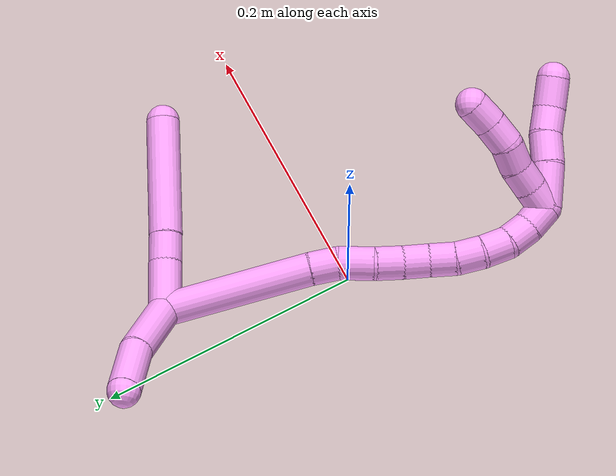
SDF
<sdf version="1.7">
 <world name="default">
  <model name="4">
   <static>0</static>
   <link name="4">
    <collision name="collision-cylinder-e_1_2_8">
     <pose>0.000912 0.001528 -0.018428 -3.05886 0.049279 -1.07409</pose>
     <geometry><cylinder><radius>0.0125</radius><length>0.037027</length></cylinder></geometry>
     <surface>
      <friction><ode><mu>1.16</mu><mu2>1.16</mu2><slip1>0</slip1><slip2>0</slip2></ode></friction>
      <contact><ode><kp>1e+06</kp><kd>1</kd><max_vel>0</max_vel><min_depth>0.001</min_depth></ode></contact>
     </surface>
    </collision>
    <visual name="visual-cylinder-e_1_2_8">
     <pose>0.000912 0.001528 -0.018428 -3.05886 0.049279 -1.07409</pose>
     <geometry><cylinder><radius>0.0125</radius><length>0.037027</length></cylinder></geometry>
     <material><ambient>1 0.65098 0.996078 1</ambient></material>
    </visual>
    <collision name="collision-cylinder-e_2_8_9">
     <pose>0.003173 0.00336 -0.047558 -3.11325 0.125341 -2.69739</pose>
     <geometry><cylinder><radius>0.0125</radius><length>0.021583</length></cylinder></geometry>
     <surface>
      <friction><ode><mu>1.16</mu><mu2>1.16</mu2><slip1>0</slip1><slip2>0</slip2></ode></friction>
      <contact><ode><kp>1e+06</kp><kd>1</kd><max_vel>0</max_vel><min_depth>0.001</min_depth></ode></contact>
     </surface>
    </collision>
    <visual name="visual-cylinder-e_2_8_9">
     <pose>0.003173 0.00336 -0.047558 -3.11325 0.125341 -2.69739</pose>
     <geometry><cylinder><radius>0.0125</radius><length>0.021583</length></cylinder></geometry>
     <material><ambient>1 0.65098 0.996078 1</ambient></material>
    </visual>
    <collision name="collision-cylinder-e_3_9_6">
     <pose>0.009339 0.007417 -0.103546 -3.05889 0.105603 -1.81315</pose>
     <geometry><cylinder><radius>0.0125</radius><length>0.091389</length></cylinder></geometry>
     <surface>
      <friction><ode><mu>1.16</mu><mu2>1.16</mu2><slip1>0</slip1><slip2>0</slip2></ode></friction>
      <contact><ode><kp>1e+06</kp><kd>1</kd><max_vel>0</max_vel><min_depth>0.001</min_depth></ode></contact>
     </surface>
    </collision>
    <visual name="visual-cylinder-e_3_9_6">
     <pose>0.009339 0.007417 -0.103546 -3.05889 0.105603 -1.81315</pose>
     <geometry><cylinder><radius>0.0125</radius><length>0.091389</length></cylinder></geometry>
     <material><ambient>1 0.65098 0.996078 1</ambient></material>
    </visual>
    <collision name="collision-cylinder-e_1_2_10">
     <pose>0.016822 0.000576 0.022644 -0.025419 0.638785 -0.008407</pose>
     <geometry><cylinder><radius>0.0125</radius><length>0.056429</length></cylinder></geometry>
     <surface>
      <friction><ode><mu>1.16</mu><mu2>1.16</mu2><slip1>0</slip1><slip2>0</slip2></ode></friction>
      <contact><ode><kp>1e+06</kp><kd>1</kd><max_vel>0</max_vel><min_depth>0.001</min_depth></ode></contact>
     </surface>
    </collision>
    <visual name="visual-cylinder-e_1_2_10">
     <pose>0.016822 0.000576 0.022644 -0.025419 0.638785 -0.008407</pose>
     <geometry><cylinder><radius>0.0125</radius><length>0.056429</length></cylinder></geometry>
     <material><ambient>1 0.65098 0.996078 1</ambient></material>
    </visual>
    <collision name="collision-cylinder-e_2_10_5">
     <pose>0.04358 -0.001734 0.06446 0.149361 0.473572 0.036106</pose>
     <geometry><cylinder><radius>0.0125</radius><length>0.043571</length></cylinder></geometry>
     <surface>
      <friction><ode><mu>1.16</mu><mu2>1.16</mu2><slip1>0</slip1><slip2>0</slip2></ode></friction>
      <contact><ode><kp>1e+06</kp><kd>1</kd><max_vel>0</max_vel><min_depth>0.001</min_depth></ode></contact>
     </surface>
    </collision>
    <visual name="visual-cylinder-e_2_10_5">
     <pose>0.04358 -0.001734 0.06446 0.149361 0.473572 0.036106</pose>
     <geometry><cylinder><radius>0.0125</radius><length>0.043571</length></cylinder></geometry>
     <material><ambient>1 0.65098 0.996078 1</ambient></material>
    </visual>
    <collision name="collision-cylinder-e_1_2_11">
     <pose>-0.014824 -0.050904 -0.017159 1.89592 -0.269255 -0.372805</pose>
     <geometry><cylinder><radius>0.0125</radius><length>0.111453</length></cylinder></geometry>
     <surface>
      <friction><ode><mu>1.16</mu><mu2>1.16</mu2><slip1>0</slip1><slip2>0</slip2></ode></friction>
      <contact><ode><kp>1e+06</kp><kd>1</kd><max_vel>0</max_vel><min_depth>0.001</min_depth></ode></contact>
     </surface>
    </collision>
    <visual name="visual-cylinder-e_1_2_11">
     <pose>-0.014824 -0.050904 -0.017159 1.89592 -0.269255 -0.372805</pose>
     <geometry><cylinder><radius>0.0125</radius><length>0.111453</length></cylinder></geometry>
     <material><ambient>1 0.65098 0.996078 1</ambient></material>
    </visual>
    <collision name="collision-cylinder-e_2_11_12">
     <pose>-0.033145 -0.111225 -0.037108 1.85887 -0.342089 -0.454678</pose>
     <geometry><cylinder><radius>0.0125</radius><length>0.02085</length></cylinder></geometry>
     <surface>
      <friction><ode><mu>1.16</mu><mu2>1.16</mu2><slip1>0</slip1><slip2>0</slip2></ode></friction>
      <contact><ode><kp>1e+06</kp><kd>1</kd><max_vel>0</max_vel><min_depth>0.001</min_depth></ode></contact>
     </surface>
    </collision>
    <visual name="visual-cylinder-e_2_11_12">
     <pose>-0.033145 -0.111225 -0.037108 1.85887 -0.342089 -0.454678</pose>
     <geometry><cylinder><radius>0.0125</radius><length>0.02085</length></cylinder></geometry>
     <material><ambient>1 0.65098 0.996078 1</ambient></material>
    </visual>
    <collision name="collision-cylinder-e_3_12_13">
     <pose>-0.041977 -0.132681 -0.040599 1.62887 -0.416426 -0.440565</pose>
     <geometry><cylinder><radius>0.0125</radius><length>0.026376</length></cylinder></geometry>
     <surface>
      <friction><ode><mu>1.16</mu><mu2>1.16</mu2><slip1>0</slip1><slip2>0</slip2></ode></friction>
      <contact><ode><kp>1e+06</kp><kd>1</kd><max_vel>0</max_vel><min_depth>0.001</min_depth></ode></contact>
     </surface>
    </collision>
    <visual name="visual-cylinder-e_3_12_13">
     <pose>-0.041977 -0.132681 -0.040599 1.62887 -0.416426 -0.440565</pose>
     <geometry><cylinder><radius>0.0125</radius><length>0.026376</length></cylinder></geometry>
     <material><ambient>1 0.65098 0.996078 1</ambient></material>
    </visual>
    <collision name="collision-cylinder-e_4_13_14">
     <pose>-0.053085 -0.15322 -0.043231 1.7944 -0.585105 -0.72171</pose>
     <geometry><cylinder><radius>0.0125</radius><length>0.020908</length></cylinder></geometry>
     <surface>
      <friction><ode><mu>1.16</mu><mu2>1.16</mu2><slip1>0</slip1><slip2>0</slip2></ode></friction>
      <contact><ode><kp>1e+06</kp><kd>1</kd><max_vel>0</max_vel><min_depth>0.001</min_depth></ode></contact>
     </surface>
    </collision>
    <visual name="visual-cylinder-e_4_13_14">
     <pose>-0.053085 -0.15322 -0.043231 1.7944 -0.585105 -0.72171</pose>
     <geometry><cylinder><radius>0.0125</radius><length>0.020908</length></cylinder></geometry>
     <material><ambient>1 0.65098 0.996078 1</ambient></material>
    </visual>
    <collision name="collision-cylinder-e_5_14_15">
     <pose>-0.063523 -0.170523 -0.047057 1.78263 -0.477852 -0.585722</pose>
     <geometry><cylinder><radius>0.0125</radius><length>0.020285</length></cylinder></geometry>
     <surface>
      <friction><ode><mu>1.16</mu><mu2>1.16</mu2><slip1>0</slip1><slip2>0</slip2></ode></friction>
      <contact><ode><kp>1e+06</kp><kd>1</kd><max_vel>0</max_vel><min_depth>0.001</min_depth></ode></contact>
     </surface>
    </collision>
    <visual name="visual-cylinder-e_5_14_15">
     <pose>-0.063523 -0.170523 -0.047057 1.78263 -0.477852 -0.585722</pose>
     <geometry><cylinder><radius>0.0125</radius><length>0.020285</length></cylinder></geometry>
     <material><ambient>1 0.65098 0.996078 1</ambient></material>
    </visual>
    <collision name="collision-cylinder-e_6_15_16">
     <pose>-0.071659 -0.188637 -0.050119 1.69561 -0.354436 -0.400504</pose>
     <geometry><cylinder><radius>0.0125</radius><length>0.020007</length></cylinder></geometry>
     <surface>
      <friction><ode><mu>1.16</mu><mu2>1.16</mu2><slip1>0</slip1><slip2>0</slip2></ode></friction>
      <contact><ode><kp>1e+06</kp><kd>1</kd><max_vel>0</max_vel><min_depth>0.001</min_depth></ode></contact>
     </surface>
    </collision>
    <visual name="visual-cylinder-e_6_15_16">
     <pose>-0.071659 -0.188637 -0.050119 1.69561 -0.354436 -0.400504</pose>
     <geometry><cylinder><radius>0.0125</radius><length>0.020007</length></cylinder></geometry>
     <material><ambient>1 0.65098 0.996078 1</ambient></material>
    </visual>
    <collision name="collision-cylinder-e_7_16_17">
     <pose>-0.078354 -0.20692 -0.054353 1.90002 -0.327691 -0.454407</pose>
     <geometry><cylinder><radius>0.0125</radius><length>0.020033</length></cylinder></geometry>
     <surface>
      <friction><ode><mu>1.16</mu><mu2>1.16</mu2><slip1>0</slip1><slip2>0</slip2></ode></friction>
      <contact><ode><kp>1e+06</kp><kd>1</kd><max_vel>0</max_vel><min_depth>0.001</min_depth></ode></contact>
     </surface>
    </collision>
    <visual name="visual-cylinder-e_7_16_17">
     <pose>-0.078354 -0.20692 -0.054353 1.90002 -0.327691 -0.454407</pose>
     <geometry><cylinder><radius>0.0125</radius><length>0.020033</length></cylinder></geometry>
     <material><ambient>1 0.65098 0.996078 1</ambient></material>
    </visual>
    <collision name="collision-cylinder-e_8_17_18">
     <pose>-0.08562 -0.223847 -0.062006 2.09394 -0.414692 -0.6985</pose>
     <geometry><cylinder><radius>0.0125</radius><length>0.020061</length></cylinder></geometry>
     <surface>
      <friction><ode><mu>1.16</mu><mu2>1.16</mu2><slip1>0</slip1><slip2>0</slip2></ode></friction>
      <contact><ode><kp>1e+06</kp><kd>1</kd><max_vel>0</max_vel><min_depth>0.001</min_depth></ode></contact>
     </surface>
    </collision>
    <visual name="visual-cylinder-e_8_17_18">
     <pose>-0.08562 -0.223847 -0.062006 2.09394 -0.414692 -0.6985</pose>
     <geometry><cylinder><radius>0.0125</radius><length>0.020061</length></cylinder></geometry>
     <material><ambient>1 0.65098 0.996078 1</ambient></material>
    </visual>
    <collision name="collision-cylinder-e_9_18_19">
     <pose>-0.093292 -0.237997 -0.073554 2.41425 -0.371513 -0.917282</pose>
     <geometry><cylinder><radius>0.0125</radius><length>0.020007</length></cylinder></geometry>
     <surface>
      <friction><ode><mu>1.16</mu><mu2>1.16</mu2><slip1>0</slip1><slip2>0</slip2></ode></friction>
      <contact><ode><kp>1e+06</kp><kd>1</kd><max_vel>0</max_vel><min_depth>0.001</min_depth></ode></contact>
     </surface>
    </collision>
    <visual name="visual-cylinder-e_9_18_19">
     <pose>-0.093292 -0.237997 -0.073554 2.41425 -0.371513 -0.917282</pose>
     <geometry><cylinder><radius>0.0125</radius><length>0.020007</length></cylinder></geometry>
     <material><ambient>1 0.65098 0.996078 1</ambient></material>
    </visual>
    <collision name="collision-cylinder-e_10_19_1">
     <pose>-0.098636 -0.249886 -0.088571 2.52633 -0.171904 -0.529654</pose>
     <geometry><cylinder><radius>0.0125</radius><length>0.02002</length></cylinder></geometry>
     <surface>
      <friction><ode><mu>1.16</mu><mu2>1.16</mu2><slip1>0</slip1><slip2>0</slip2></ode></friction>
      <contact><ode><kp>1e+06</kp><kd>1</kd><max_vel>0</max_vel><min_depth>0.001</min_depth></ode></contact>
     </surface>
    </collision>
    <visual name="visual-cylinder-e_10_19_1">
     <pose>-0.098636 -0.249886 -0.088571 2.52633 -0.171904 -0.529654</pose>
     <geometry><cylinder><radius>0.0125</radius><length>0.02002</length></cylinder></geometry>
     <material><ambient>1 0.65098 0.996078 1</ambient></material>
    </visual>
    <collision name="collision-cylinder-e_1_1_20">
     <pose>-0.097171 -0.25717 -0.112782 3.04342 0.193274 2.20346</pose>
     <geometry><cylinder><radius>0.0125</radius><length>0.033086</length></cylinder></geometry>
     <surface>
      <friction><ode><mu>1.16</mu><mu2>1.16</mu2><slip1>0</slip1><slip2>0</slip2></ode></friction>
      <contact><ode><kp>1e+06</kp><kd>1</kd><max_vel>0</max_vel><min_depth>0.001</min_depth></ode></contact>
     </surface>
    </collision>
    <visual name="visual-cylinder-e_1_1_20">
     <pose>-0.097171 -0.25717 -0.112782 3.04342 0.193274 2.20346</pose>
     <geometry><cylinder><radius>0.0125</radius><length>0.033086</length></cylinder></geometry>
     <material><ambient>1 0.65098 0.996078 1</ambient></material>
    </visual>
    <collision name="collision-cylinder-e_2_20_21">
     <pose>-0.091935 -0.257986 -0.140258 -3.07317 0.179482 -2.41473</pose>
     <geometry><cylinder><radius>0.0125</radius><length>0.023061</length></cylinder></geometry>
     <surface>
      <friction><ode><mu>1.16</mu><mu2>1.16</mu2><slip1>0</slip1><slip2>0</slip2></ode></friction>
      <contact><ode><kp>1e+06</kp><kd>1</kd><max_vel>0</max_vel><min_depth>0.001</min_depth></ode></contact>
     </surface>
    </collision>
    <visual name="visual-cylinder-e_2_20_21">
     <pose>-0.091935 -0.257986 -0.140258 -3.07317 0.179482 -2.41473</pose>
     <geometry><cylinder><radius>0.0125</radius><length>0.023061</length></cylinder></geometry>
     <material><ambient>1 0.65098 0.996078 1</ambient></material>
    </visual>
    <collision name="collision-cylinder-e_3_21_22">
     <pose>-0.089193 -0.258435 -0.161593 3.01998 0.06762 1.01419</pose>
     <geometry><cylinder><radius>0.0125</radius><length>0.020228</length></cylinder></geometry>
     <surface>
      <friction><ode><mu>1.16</mu><mu2>1.16</mu2><slip1>0</slip1><slip2>0</slip2></ode></friction>
      <contact><ode><kp>1e+06</kp><kd>1</kd><max_vel>0</max_vel><min_depth>0.001</min_depth></ode></contact>
     </surface>
    </collision>
    <visual name="visual-cylinder-e_3_21_22">
     <pose>-0.089193 -0.258435 -0.161593 3.01998 0.06762 1.01419</pose>
     <geometry><cylinder><radius>0.0125</radius><length>0.020228</length></cylinder></geometry>
     <material><ambient>1 0.65098 0.996078 1</ambient></material>
    </visual>
    <collision name="collision-cylinder-e_4_22_4">
     <pose>-0.08543 -0.261888 -0.182793 2.94485 0.263835 1.86258</pose>
     <geometry><cylinder><radius>0.0125</radius><length>0.023624</length></cylinder></geometry>
     <surface>
      <friction><ode><mu>1.16</mu><mu2>1.16</mu2><slip1>0</slip1><slip2>0</slip2></ode></friction>
      <contact><ode><kp>1e+06</kp><kd>1</kd><max_vel>0</max_vel><min_depth>0.001</min_depth></ode></contact>
     </surface>
    </collision>
    <visual name="visual-cylinder-e_4_22_4">
     <pose>-0.08543 -0.261888 -0.182793 2.94485 0.263835 1.86258</pose>
     <geometry><cylinder><radius>0.0125</radius><length>0.023624</length></cylinder></geometry>
     <material><ambient>1 0.65098 0.996078 1</ambient></material>
    </visual>
    <collision name="collision-cylinder-e_1_1_23">
     <pose>-0.092602 -0.252374 -0.102076 -2.61011 0.886226 -2.10018</pose>
     <geometry><cylinder><radius>0.0125</radius><length>0.02</length></cylinder></geometry>
     <surface>
      <friction><ode><mu>1.16</mu><mu2>1.16</mu2><slip1>0</slip1><slip2>0</slip2></ode></friction>
      <contact><ode><kp>1e+06</kp><kd>1</kd><max_vel>0</max_vel><min_depth>0.001</min_depth></ode></contact>
     </surface>
    </collision>
    <visual name="visual-cylinder-e_1_1_23">
     <pose>-0.092602 -0.252374 -0.102076 -2.61011 0.886226 -2.10018</pose>
     <geometry><cylinder><radius>0.0125</radius><length>0.02</length></cylinder></geometry>
     <material><ambient>1 0.65098 0.996078 1</ambient></material>
    </visual>
    <collision name="collision-cylinder-e_2_23_24">
     <pose>-0.076527 -0.246514 -0.112385 -2.64141 0.984115 -2.25219</pose>
     <geometry><cylinder><radius>0.0125</radius><length>0.02</length></cylinder></geometry>
     <surface>
      <friction><ode><mu>1.16</mu><mu2>1.16</mu2><slip1>0</slip1><slip2>0</slip2></ode></friction>
      <contact><ode><kp>1e+06</kp><kd>1</kd><max_vel>0</max_vel><min_depth>0.001</min_depth></ode></contact>
     </surface>
    </collision>
    <visual name="visual-cylinder-e_2_23_24">
     <pose>-0.076527 -0.246514 -0.112385 -2.64141 0.984115 -2.25219</pose>
     <geometry><cylinder><radius>0.0125</radius><length>0.02</length></cylinder></geometry>
     <material><ambient>1 0.65098 0.996078 1</ambient></material>
    </visual>
    <collision name="collision-cylinder-e_3_24_25">
     <pose>-0.059799 -0.243176 -0.122625 -3.0153 0.997275 -2.91039</pose>
     <geometry><cylinder><radius>0.0125</radius><length>0.02</length></cylinder></geometry>
     <surface>
      <friction><ode><mu>1.16</mu><mu2>1.16</mu2><slip1>0</slip1><slip2>0</slip2></ode></friction>
      <contact><ode><kp>1e+06</kp><kd>1</kd><max_vel>0</max_vel><min_depth>0.001</min_depth></ode></contact>
     </surface>
    </collision>
    <visual name="visual-cylinder-e_3_24_25">
     <pose>-0.059799 -0.243176 -0.122625 -3.0153 0.997275 -2.91039</pose>
     <geometry><cylinder><radius>0.0125</radius><length>0.02</length></cylinder></geometry>
     <material><ambient>1 0.65098 0.996078 1</ambient></material>
    </visual>
    <collision name="collision-cylinder-e_4_25_26">
     <pose>-0.044001 -0.238591 -0.13349 -2.52306 0.832824 -1.89033</pose>
     <geometry><cylinder><radius>0.0125</radius><length>0.02</length></cylinder></geometry>
     <surface>
      <friction><ode><mu>1.16</mu><mu2>1.16</mu2><slip1>0</slip1><slip2>0</slip2></ode></friction>
      <contact><ode><kp>1e+06</kp><kd>1</kd><max_vel>0</max_vel><min_depth>0.001</min_depth></ode></contact>
     </surface>
    </collision>
    <visual name="visual-cylinder-e_4_25_26">
     <pose>-0.044001 -0.238591 -0.13349 -2.52306 0.832824 -1.89033</pose>
     <geometry><cylinder><radius>0.0125</radius><length>0.02</length></cylinder></geometry>
     <material><ambient>1 0.65098 0.996078 1</ambient></material>
    </visual>
    <collision name="collision-cylinder-e_5_26_3">
     <pose>-0.028752 -0.230501 -0.143534 -2.39886 0.902788 -1.78805</pose>
     <geometry><cylinder><radius>0.0125</radius><length>0.02</length></cylinder></geometry>
     <surface>
      <friction><ode><mu>1.16</mu><mu2>1.16</mu2><slip1>0</slip1><slip2>0</slip2></ode></friction>
      <contact><ode><kp>1e+06</kp><kd>1</kd><max_vel>0</max_vel><min_depth>0.001</min_depth></ode></contact>
     </surface>
    </collision>
    <visual name="visual-cylinder-e_5_26_3">
     <pose>-0.028752 -0.230501 -0.143534 -2.39886 0.902788 -1.78805</pose>
     <geometry><cylinder><radius>0.0125</radius><length>0.02</length></cylinder></geometry>
     <material><ambient>1 0.65098 0.996078 1</ambient></material>
    </visual>
    <collision name="collision-sphere-3">
     <pose>-0.020901 -0.226312 -0.148097 0 -0 0</pose>
     <geometry><sphere><radius>0.0125</radius></sphere></geometry>
     <surface>
      <friction><ode><mu>1.16</mu><mu2>1.16</mu2><slip1>0</slip1><slip2>0</slip2></ode></friction>
      <contact><ode><kp>1e+06</kp><kd>1</kd><max_vel>0</max_vel><min_depth>0.001</min_depth></ode></contact>
     </surface>
    </collision>
    <visual name="visual-sphere-3">
     <pose>-0.020901 -0.226312 -0.148097 0 -0 0</pose>
     <geometry><sphere><radius>0.0125</radius></sphere></geometry>
     <material><ambient>1 0.65098 0.996078 1</ambient></material>
    </visual>
    <collision name="collision-sphere-26">
     <pose>-0.036603 -0.23469 -0.138971 0 -0 0</pose>
     <geometry><sphere><radius>0.0125</radius></sphere></geometry>
     <surface>
      <friction><ode><mu>1.16</mu><mu2>1.16</mu2><slip1>0</slip1><slip2>0</slip2></ode></friction>
      <contact><ode><kp>1e+06</kp><kd>1</kd><max_vel>0</max_vel><min_depth>0.001</min_depth></ode></contact>
     </surface>
    </collision>
    <visual name="visual-sphere-26">
     <pose>-0.036603 -0.23469 -0.138971 0 -0 0</pose>
     <geometry><sphere><radius>0.0125</radius></sphere></geometry>
     <material><ambient>1 0.65098 0.996078 1</ambient></material>
    </visual>
    <collision name="collision-sphere-25">
     <pose>-0.051399 -0.242493 -0.128008 0 -0 0</pose>
     <geometry><sphere><radius>0.0125</radius></sphere></geometry>
     <surface>
      <friction><ode><mu>1.16</mu><mu2>1.16</mu2><slip1>0</slip1><slip2>0</slip2></ode></friction>
      <contact><ode><kp>1e+06</kp><kd>1</kd><max_vel>0</max_vel><min_depth>0.001</min_depth></ode></contact>
     </surface>
    </collision>
    <visual name="visual-sphere-25">
     <pose>-0.051399 -0.242493 -0.128008 0 -0 0</pose>
     <geometry><sphere><radius>0.0125</radius></sphere></geometry>
     <material><ambient>1 0.65098 0.996078 1</ambient></material>
    </visual>
    <collision name="collision-sphere-24">
     <pose>-0.068199 -0.243859 -0.117243 0 -0 0</pose>
     <geometry><sphere><radius>0.0125</radius></sphere></geometry>
     <surface>
      <friction><ode><mu>1.16</mu><mu2>1.16</mu2><slip1>0</slip1><slip2>0</slip2></ode></friction>
      <contact><ode><kp>1e+06</kp><kd>1</kd><max_vel>0</max_vel><min_depth>0.001</min_depth></ode></contact>
     </surface>
    </collision>
    <visual name="visual-sphere-24">
     <pose>-0.068199 -0.243859 -0.117243 0 -0 0</pose>
     <geometry><sphere><radius>0.0125</radius></sphere></geometry>
     <material><ambient>1 0.65098 0.996078 1</ambient></material>
    </visual>
    <collision name="collision-sphere-23">
     <pose>-0.084855 -0.249169 -0.107527 0 -0 0</pose>
     <geometry><sphere><radius>0.0125</radius></sphere></geometry>
     <surface>
      <friction><ode><mu>1.16</mu><mu2>1.16</mu2><slip1>0</slip1><slip2>0</slip2></ode></friction>
      <contact><ode><kp>1e+06</kp><kd>1</kd><max_vel>0</max_vel><min_depth>0.001</min_depth></ode></contact>
     </surface>
    </collision>
    <visual name="visual-sphere-23">
     <pose>-0.084855 -0.249169 -0.107527 0 -0 0</pose>
     <geometry><sphere><radius>0.0125</radius></sphere></geometry>
     <material><ambient>1 0.65098 0.996078 1</ambient></material>
    </visual>
    <collision name="collision-sphere-4">
     <pose>-0.082349 -0.264117 -0.193976 0 -0 0</pose>
     <geometry><sphere><radius>0.0125</radius></sphere></geometry>
     <surface>
      <friction><ode><mu>1.16</mu><mu2>1.16</mu2><slip1>0</slip1><slip2>0</slip2></ode></friction>
      <contact><ode><kp>1e+06</kp><kd>1</kd><max_vel>0</max_vel><min_depth>0.001</min_depth></ode></contact>
     </surface>
    </collision>
    <visual name="visual-sphere-4">
     <pose>-0.082349 -0.264117 -0.193976 0 -0 0</pose>
     <geometry><sphere><radius>0.0125</radius></sphere></geometry>
     <material><ambient>1 0.65098 0.996078 1</ambient></material>
    </visual>
    <collision name="collision-sphere-22">
     <pose>-0.08851 -0.259659 -0.17161 0 -0 0</pose>
     <geometry><sphere><radius>0.0125</radius></sphere></geometry>
     <surface>
      <friction><ode><mu>1.16</mu><mu2>1.16</mu2><slip1>0</slip1><slip2>0</slip2></ode></friction>
      <contact><ode><kp>1e+06</kp><kd>1</kd><max_vel>0</max_vel><min_depth>0.001</min_depth></ode></contact>
     </surface>
    </collision>
    <visual name="visual-sphere-22">
     <pose>-0.08851 -0.259659 -0.17161 0 -0 0</pose>
     <geometry><sphere><radius>0.0125</radius></sphere></geometry>
     <material><ambient>1 0.65098 0.996078 1</ambient></material>
    </visual>
    <collision name="collision-sphere-21">
     <pose>-0.089877 -0.25721 -0.151577 0 -0 0</pose>
     <geometry><sphere><radius>0.0125</radius></sphere></geometry>
     <surface>
      <friction><ode><mu>1.16</mu><mu2>1.16</mu2><slip1>0</slip1><slip2>0</slip2></ode></friction>
      <contact><ode><kp>1e+06</kp><kd>1</kd><max_vel>0</max_vel><min_depth>0.001</min_depth></ode></contact>
     </surface>
    </collision>
    <visual name="visual-sphere-21">
     <pose>-0.089877 -0.25721 -0.151577 0 -0 0</pose>
     <geometry><sphere><radius>0.0125</radius></sphere></geometry>
     <material><ambient>1 0.65098 0.996078 1</ambient></material>
    </visual>
    <collision name="collision-sphere-20">
     <pose>-0.093994 -0.258762 -0.128939 0 -0 0</pose>
     <geometry><sphere><radius>0.0125</radius></sphere></geometry>
     <surface>
      <friction><ode><mu>1.16</mu><mu2>1.16</mu2><slip1>0</slip1><slip2>0</slip2></ode></friction>
      <contact><ode><kp>1e+06</kp><kd>1</kd><max_vel>0</max_vel><min_depth>0.001</min_depth></ode></contact>
     </surface>
    </collision>
    <visual name="visual-sphere-20">
     <pose>-0.093994 -0.258762 -0.128939 0 -0 0</pose>
     <geometry><sphere><radius>0.0125</radius></sphere></geometry>
     <material><ambient>1 0.65098 0.996078 1</ambient></material>
    </visual>
    <collision name="collision-sphere-5">
     <pose>0.053515 -0.004619 0.083632 0 -0 0</pose>
     <geometry><sphere><radius>0.0125</radius></sphere></geometry>
     <surface>
      <friction><ode><mu>1.16</mu><mu2>1.16</mu2><slip1>0</slip1><slip2>0</slip2></ode></friction>
      <contact><ode><kp>1e+06</kp><kd>1</kd><max_vel>0</max_vel><min_depth>0.001</min_depth></ode></contact>
     </surface>
    </collision>
    <visual name="visual-sphere-5">
     <pose>0.053515 -0.004619 0.083632 0 -0 0</pose>
     <geometry><sphere><radius>0.0125</radius></sphere></geometry>
     <material><ambient>1 0.65098 0.996078 1</ambient></material>
    </visual>
    <collision name="collision-sphere-10">
     <pose>0.033644 0.001151 0.045288 0 -0 0</pose>
     <geometry><sphere><radius>0.0125</radius></sphere></geometry>
     <surface>
      <friction><ode><mu>1.16</mu><mu2>1.16</mu2><slip1>0</slip1><slip2>0</slip2></ode></friction>
      <contact><ode><kp>1e+06</kp><kd>1</kd><max_vel>0</max_vel><min_depth>0.001</min_depth></ode></contact>
     </surface>
    </collision>
    <visual name="visual-sphere-10">
     <pose>0.033644 0.001151 0.045288 0 -0 0</pose>
     <geometry><sphere><radius>0.0125</radius></sphere></geometry>
     <material><ambient>1 0.65098 0.996078 1</ambient></material>
    </visual>
    <collision name="collision-sphere-6">
     <pose>0.014155 0.011171 -0.148831 0 -0 0</pose>
     <geometry><sphere><radius>0.0125</radius></sphere></geometry>
     <surface>
      <friction><ode><mu>1.16</mu><mu2>1.16</mu2><slip1>0</slip1><slip2>0</slip2></ode></friction>
      <contact><ode><kp>1e+06</kp><kd>1</kd><max_vel>0</max_vel><min_depth>0.001</min_depth></ode></contact>
     </surface>
    </collision>
    <visual name="visual-sphere-6">
     <pose>0.014155 0.011171 -0.148831 0 -0 0</pose>
     <geometry><sphere><radius>0.0125</radius></sphere></geometry>
     <material><ambient>1 0.65098 0.996078 1</ambient></material>
    </visual>
    <collision name="collision-sphere-9">
     <pose>0.004522 0.003663 -0.058261 0 -0 0</pose>
     <geometry><sphere><radius>0.0125</radius></sphere></geometry>
     <surface>
      <friction><ode><mu>1.16</mu><mu2>1.16</mu2><slip1>0</slip1><slip2>0</slip2></ode></friction>
      <contact><ode><kp>1e+06</kp><kd>1</kd><max_vel>0</max_vel><min_depth>0.001</min_depth></ode></contact>
     </surface>
    </collision>
    <visual name="visual-sphere-9">
     <pose>0.004522 0.003663 -0.058261 0 -0 0</pose>
     <geometry><sphere><radius>0.0125</radius></sphere></geometry>
     <material><ambient>1 0.65098 0.996078 1</ambient></material>
    </visual>
    <collision name="collision-sphere-2">
     <geometry><sphere><radius>0.0125</radius></sphere></geometry>
     <surface>
      <friction><ode><mu>1.16</mu><mu2>1.16</mu2><slip1>0</slip1><slip2>0</slip2></ode></friction>
      <contact><ode><kp>1e+06</kp><kd>1</kd><max_vel>0</max_vel><min_depth>0.001</min_depth></ode></contact>
     </surface>
    </collision>
    <visual name="visual-sphere-2">
     <geometry><sphere><radius>0.0125</radius></sphere></geometry>
     <material><ambient>1 0.65098 0.996078 1</ambient></material>
    </visual>
    <collision name="collision-sphere-19">
     <pose>-0.096924 -0.244194 -0.080517 0 -0 0</pose>
     <geometry><sphere><radius>0.0125</radius></sphere></geometry>
     <surface>
      <friction><ode><mu>1.16</mu><mu2>1.16</mu2><slip1>0</slip1><slip2>0</slip2></ode></friction>
      <contact><ode><kp>1e+06</kp><kd>1</kd><max_vel>0</max_vel><min_depth>0.001</min_depth></ode></contact>
     </surface>
    </collision>
    <visual name="visual-sphere-19">
     <pose>-0.096924 -0.244194 -0.080517 0 -0 0</pose>
     <geometry><sphere><radius>0.0125</radius></sphere></geometry>
     <material><ambient>1 0.65098 0.996078 1</ambient></material>
    </visual>
    <collision name="collision-sphere-8">
     <pose>0.001824 0.003056 -0.036856 0 -0 0</pose>
     <geometry><sphere><radius>0.0125</radius></sphere></geometry>
     <surface>
      <friction><ode><mu>1.16</mu><mu2>1.16</mu2><slip1>0</slip1><slip2>0</slip2></ode></friction>
      <contact><ode><kp>1e+06</kp><kd>1</kd><max_vel>0</max_vel><min_depth>0.001</min_depth></ode></contact>
     </surface>
    </collision>
    <visual name="visual-sphere-8">
     <pose>0.001824 0.003056 -0.036856 0 -0 0</pose>
     <geometry><sphere><radius>0.0125</radius></sphere></geometry>
     <material><ambient>1 0.65098 0.996078 1</ambient></material>
    </visual>
    <collision name="collision-sphere-11">
     <pose>-0.029648 -0.101809 -0.034318 0 -0 0</pose>
     <geometry><sphere><radius>0.0125</radius></sphere></geometry>
     <surface>
      <friction><ode><mu>1.16</mu><mu2>1.16</mu2><slip1>0</slip1><slip2>0</slip2></ode></friction>
      <contact><ode><kp>1e+06</kp><kd>1</kd><max_vel>0</max_vel><min_depth>0.001</min_depth></ode></contact>
     </surface>
    </collision>
    <visual name="visual-sphere-11">
     <pose>-0.029648 -0.101809 -0.034318 0 -0 0</pose>
     <geometry><sphere><radius>0.0125</radius></sphere></geometry>
     <material><ambient>1 0.65098 0.996078 1</ambient></material>
    </visual>
    <collision name="collision-sphere-12">
     <pose>-0.036642 -0.120641 -0.039899 0 -0 0</pose>
     <geometry><sphere><radius>0.0125</radius></sphere></geometry>
     <surface>
      <friction><ode><mu>1.16</mu><mu2>1.16</mu2><slip1>0</slip1><slip2>0</slip2></ode></friction>
      <contact><ode><kp>1e+06</kp><kd>1</kd><max_vel>0</max_vel><min_depth>0.001</min_depth></ode></contact>
     </surface>
    </collision>
    <visual name="visual-sphere-12">
     <pose>-0.036642 -0.120641 -0.039899 0 -0 0</pose>
     <geometry><sphere><radius>0.0125</radius></sphere></geometry>
     <material><ambient>1 0.65098 0.996078 1</ambient></material>
    </visual>
    <collision name="collision-sphere-13">
     <pose>-0.047311 -0.144722 -0.041299 0 -0 0</pose>
     <geometry><sphere><radius>0.0125</radius></sphere></geometry>
     <surface>
      <friction><ode><mu>1.16</mu><mu2>1.16</mu2><slip1>0</slip1><slip2>0</slip2></ode></friction>
      <contact><ode><kp>1e+06</kp><kd>1</kd><max_vel>0</max_vel><min_depth>0.001</min_depth></ode></contact>
     </surface>
    </collision>
    <visual name="visual-sphere-13">
     <pose>-0.047311 -0.144722 -0.041299 0 -0 0</pose>
     <geometry><sphere><radius>0.0125</radius></sphere></geometry>
     <material><ambient>1 0.65098 0.996078 1</ambient></material>
    </visual>
    <collision name="collision-sphere-14">
     <pose>-0.058858 -0.161718 -0.045164 0 -0 0</pose>
     <geometry><sphere><radius>0.0125</radius></sphere></geometry>
     <surface>
      <friction><ode><mu>1.16</mu><mu2>1.16</mu2><slip1>0</slip1><slip2>0</slip2></ode></friction>
      <contact><ode><kp>1e+06</kp><kd>1</kd><max_vel>0</max_vel><min_depth>0.001</min_depth></ode></contact>
     </surface>
    </collision>
    <visual name="visual-sphere-14">
     <pose>-0.058858 -0.161718 -0.045164 0 -0 0</pose>
     <geometry><sphere><radius>0.0125</radius></sphere></geometry>
     <material><ambient>1 0.65098 0.996078 1</ambient></material>
    </visual>
    <collision name="collision-sphere-15">
     <pose>-0.068187 -0.179329 -0.048951 0 -0 0</pose>
     <geometry><sphere><radius>0.0125</radius></sphere></geometry>
     <surface>
      <friction><ode><mu>1.16</mu><mu2>1.16</mu2><slip1>0</slip1><slip2>0</slip2></ode></friction>
      <contact><ode><kp>1e+06</kp><kd>1</kd><max_vel>0</max_vel><min_depth>0.001</min_depth></ode></contact>
     </surface>
    </collision>
    <visual name="visual-sphere-15">
     <pose>-0.068187 -0.179329 -0.048951 0 -0 0</pose>
     <geometry><sphere><radius>0.0125</radius></sphere></geometry>
     <material><ambient>1 0.65098 0.996078 1</ambient></material>
    </visual>
    <collision name="collision-sphere-16">
     <pose>-0.07513 -0.197946 -0.051287 0 -0 0</pose>
     <geometry><sphere><radius>0.0125</radius></sphere></geometry>
     <surface>
      <friction><ode><mu>1.16</mu><mu2>1.16</mu2><slip1>0</slip1><slip2>0</slip2></ode></friction>
      <contact><ode><kp>1e+06</kp><kd>1</kd><max_vel>0</max_vel><min_depth>0.001</min_depth></ode></contact>
     </surface>
    </collision>
    <visual name="visual-sphere-16">
     <pose>-0.07513 -0.197946 -0.051287 0 -0 0</pose>
     <geometry><sphere><radius>0.0125</radius></sphere></geometry>
     <material><ambient>1 0.65098 0.996078 1</ambient></material>
    </visual>
    <collision name="collision-sphere-17">
     <pose>-0.081578 -0.215894 -0.057419 0 -0 0</pose>
     <geometry><sphere><radius>0.0125</radius></sphere></geometry>
     <surface>
      <friction><ode><mu>1.16</mu><mu2>1.16</mu2><slip1>0</slip1><slip2>0</slip2></ode></friction>
      <contact><ode><kp>1e+06</kp><kd>1</kd><max_vel>0</max_vel><min_depth>0.001</min_depth></ode></contact>
     </surface>
    </collision>
    <visual name="visual-sphere-17">
     <pose>-0.081578 -0.215894 -0.057419 0 -0 0</pose>
     <geometry><sphere><radius>0.0125</radius></sphere></geometry>
     <material><ambient>1 0.65098 0.996078 1</ambient></material>
    </visual>
    <collision name="collision-sphere-18">
     <pose>-0.089661 -0.231799 -0.066592 0 -0 0</pose>
     <geometry><sphere><radius>0.0125</radius></sphere></geometry>
     <surface>
      <friction><ode><mu>1.16</mu><mu2>1.16</mu2><slip1>0</slip1><slip2>0</slip2></ode></friction>
      <contact><ode><kp>1e+06</kp><kd>1</kd><max_vel>0</max_vel><min_depth>0.001</min_depth></ode></contact>
     </surface>
    </collision>
    <visual name="visual-sphere-18">
     <pose>-0.089661 -0.231799 -0.066592 0 -0 0</pose>
     <geometry><sphere><radius>0.0125</radius></sphere></geometry>
     <material><ambient>1 0.65098 0.996078 1</ambient></material>
    </visual>
    <collision name="collision-sphere-1">
     <pose>-0.100349 -0.255579 -0.096625 0 -0 0</pose>
     <geometry><sphere><radius>0.0125</radius></sphere></geometry>
     <surface>
      <friction><ode><mu>1.16</mu><mu2>1.16</mu2><slip1>0</slip1><slip2>0</slip2></ode></friction>
      <contact><ode><kp>1e+06</kp><kd>1</kd><max_vel>0</max_vel><min_depth>0.001</min_depth></ode></contact>
     </surface>
    </collision>
    <visual name="visual-sphere-1">
     <pose>-0.100349 -0.255579 -0.096625 0 -0 0</pose>
     <geometry><sphere><radius>0.0125</radius></sphere></geometry>
     <material><ambient>1 0.65098 0.996078 1</ambient></material>
    </visual>
    <inertial>
     <pose>-0.034398 -0.119548 -0.061489 0 -0 0</pose>
     <mass>0.75</mass>
     <inertia><ixx>7e-06</ixx><ixy>0</ixy><ixz>0</ixz><iyy>-0.00011</iyy><iyz>0</iyz><izz>9.8e-05</izz></inertia>
    </inertial>
   </link>
   <pose>0.029291 0.137154 0.043973 -1.4366 -1.13026 0.88296</pose>
  </model>
 </world>
</sdf>
